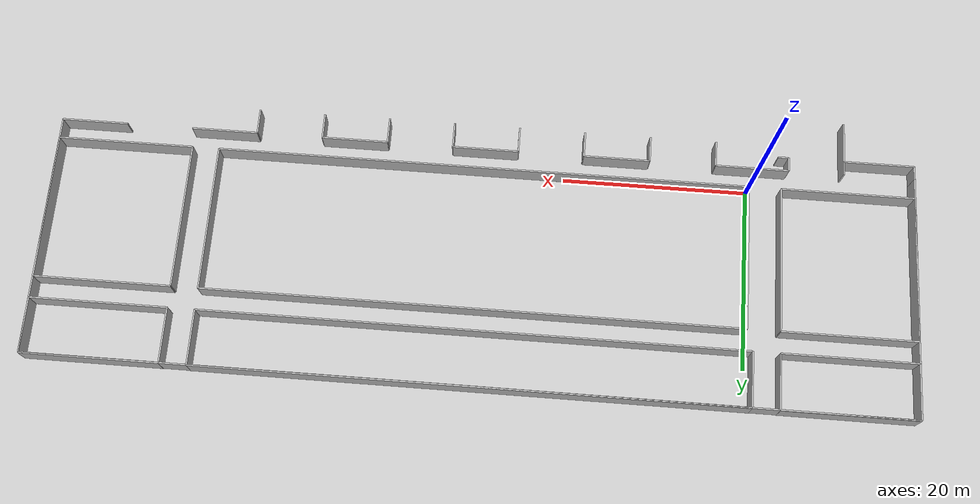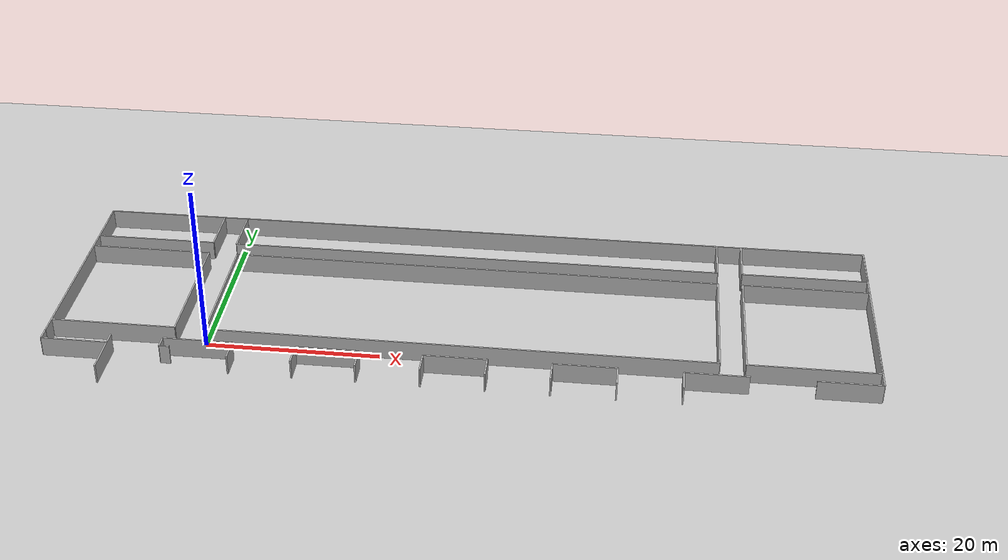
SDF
<?xml version="1.0"?>
<sdf version="1.4">
  <world name="default">
    <include>
      <uri>model://sun</uri>
    </include>
    <include>
      <uri>model://ground_plane</uri>
    </include>

    <model name="model_0">
      <pose>0 0 1 0 0 0</pose>

      <link name='Wall_0'>
        <pose>28.988 0 0 0 0 0</pose>
        <collision name='Wall_0_Collision'>
          <geometry>
            <box>
              <size>57.976 0.169 2.5</size>
            </box>
          </geometry>
        </collision>
        <visual name='Wall_0_Visual'>
          <geometry>
            <box>
              <size>57.976 0.169 2.5</size>
            </box>
          </geometry>
        </visual>
      </link>

      <link name='Wall_1'>
        <pose>28.988 16 0 0 0 0</pose>
        <collision name='Wall_1_Collision'>
          <geometry>
            <box>
              <size>57.976 0.169 2.5</size>
            </box>
          </geometry>
        </collision>
        <visual name='Wall_1_Visual'>
          <geometry>
            <box>
              <size>57.976 0.169 2.5</size>
            </box>
          </geometry>
        </visual>
      </link>

      <link name='Wall_2'>
        <pose>0 8 0 0 0 1.5707</pose>
        <collision name='Wall_2_Collision'>
          <geometry>
            <box>
              <size>16 0.169 2.5</size>
            </box>
          </geometry>
        </collision>
        <visual name='Wall_2_Visual'>
          <geometry>
            <box>
              <size>16 0.169 2.5</size>
            </box>
          </geometry>
        </visual>
      </link>

      <link name='Wall_3'>
        <pose>57.976 8 0 0 0 1.5707</pose>
        <collision name='Wall_3_Collision'>
          <geometry>
            <box>
              <size>16 0.169 2.5</size>
            </box>
          </geometry>
        </collision>
        <visual name='Wall_3_Visual'>
          <geometry>
            <box>
              <size>16 0.169 2.5</size>
            </box>
          </geometry>
        </visual>
      </link>

      <static>1</static>
    </model>

    <model name="model_1">
      <pose>60.900 0 1 0 0 0</pose>

      <link name='Wall_0'>
        <pose>7.369 0 0 0 0 0</pose>
        <collision name='Wall_0_Collision'>
          <geometry>
            <box>
              <size>14.738 0.169 2.5</size>
            </box>
          </geometry>
        </collision>
        <visual name='Wall_0_Visual'>
          <geometry>
            <box>
              <size>14.738 0.169 2.5</size>
            </box>
          </geometry>
        </visual>
      </link>

      <link name='Wall_1'>
        <pose>7.369 16 0 0 0 0</pose>
        <collision name='Wall_1_Collision'>
          <geometry>
            <box>
              <size>14.738 0.169 2.5</size>
            </box>
          </geometry>
        </collision>
        <visual name='Wall_1_Visual'>
          <geometry>
            <box>
              <size>14.738 0.169 2.5</size>
            </box>
          </geometry>
        </visual>
      </link>

      <link name='Wall_2'>
        <pose>0 8 0 0 0 1.5707</pose>
        <collision name='Wall_2_Collision'>
          <geometry>
            <box>
              <size>16 0.169 2.5</size>
            </box>
          </geometry>
        </collision>
        <visual name='Wall_2_Visual'>
          <geometry>
            <box>
              <size>16 0.169 2.5</size>
            </box>
          </geometry>
        </visual>
      </link>

      <link name='Wall_3'>
        <pose>14.738 8 0 0 0 1.5707</pose>
        <collision name='Wall_3_Collision'>
          <geometry>
            <box>
              <size>16 0.169 2.5</size>
            </box>
          </geometry>
        </collision>
        <visual name='Wall_3_Visual'>
          <geometry>
            <box>
              <size>16 0.169 2.5</size>
            </box>
          </geometry>
        </visual>
      </link>

      <static>1</static>
    </model>

    <model name="model_2">
      <pose>-17.962 0 1 0 0 0</pose>

      <link name='Wall_0'>
        <pose>7.219 0 0 0 0 0</pose>
        <collision name='Wall_0_Collision'>
          <geometry>
            <box>
              <size>14.438 0.169 2.5</size>
            </box>
          </geometry>
        </collision>
        <visual name='Wall_0_Visual'>
          <geometry>
            <box>
              <size>14.438 0.169 2.5</size>
            </box>
          </geometry>
        </visual>
      </link>

      <link name='Wall_1'>
        <pose>7.219 16 0 0 0 0</pose>
        <collision name='Wall_1_Collision'>
          <geometry>
            <box>
              <size>14.438 0.169 2.5</size>
            </box>
          </geometry>
        </collision>
        <visual name='Wall_1_Visual'>
          <geometry>
            <box>
              <size>14.438 0.169 2.5</size>
            </box>
          </geometry>
        </visual>
      </link>

      <link name='Wall_2'>
        <pose>0 8 0 0 0 1.5707</pose>
        <collision name='Wall_2_Collision'>
          <geometry>
            <box>
              <size>16 0.169 2.5</size>
            </box>
          </geometry>
        </collision>
        <visual name='Wall_2_Visual'>
          <geometry>
            <box>
              <size>16 0.169 2.5</size>
            </box>
          </geometry>
        </visual>
      </link>

      <link name='Wall_3'>
        <pose>14.438 8 0 0 0 1.5707</pose>
        <collision name='Wall_3_Collision'>
          <geometry>
            <box>
              <size>16 0.169 2.5</size>
            </box>
          </geometry>
        </collision>
        <visual name='Wall_3_Visual'>
          <geometry>
            <box>
              <size>16 0.169 2.5</size>
            </box>
          </geometry>
        </visual>
      </link>

      <static>1</static>
    </model>

    <model name="model_3">
      <pose>-17.962 18.362 1 0 0 0</pose>

      <link name='Wall_0'>
        <pose>7.219 0 0 0 0 0</pose>
        <collision name='Wall_0_Collision'>
          <geometry>
            <box>
              <size>14.438 0.169 2.5</size>
            </box>
          </geometry>
        </collision>
        <visual name='Wall_0_Visual'>
          <geometry>
            <box>
              <size>14.438 0.169 2.5</size>
            </box>
          </geometry>
        </visual>
      </link>

      <link name='Wall_1'>
        <pose>7.219 6 0 0 0 0</pose>
        <collision name='Wall_1_Collision'>
          <geometry>
            <box>
              <size>14.438 0.169 2.5</size>
            </box>
          </geometry>
        </collision>
        <visual name='Wall_1_Visual'>
          <geometry>
            <box>
              <size>14.438 0.169 2.5</size>
            </box>
          </geometry>
        </visual>
      </link>

      <link name='Wall_2'>
        <pose>0 3 0 0 0 1.5707</pose>
        <collision name='Wall_2_Collision'>
          <geometry>
            <box>
              <size>6 0.169 2.5</size>
            </box>
          </geometry>
        </collision>
        <visual name='Wall_2_Visual'>
          <geometry>
            <box>
              <size>6 0.169 2.5</size>
            </box>
          </geometry>
        </visual>
      </link>

      <link name='Wall_3'>
        <pose>14.438 3 0 0 0 1.5707</pose>
        <collision name='Wall_3_Collision'>
          <geometry>
            <box>
              <size>6 0.169 2.5</size>
            </box>
          </geometry>
        </collision>
        <visual name='Wall_3_Visual'>
          <geometry>
            <box>
              <size>6 0.169 2.5</size>
            </box>
          </geometry>
        </visual>
      </link>

      <static>1</static>
    </model>

    <model name="model_4">
      <pose>-0.636 18.362 1 0 0 0</pose>

      <link name='Wall_0'>
        <pose>29.306 0 0 0 0 0</pose>
        <collision name='Wall_0_Collision'>
          <geometry>
            <box>
              <size>58.612 0.169 2.5</size>
            </box>
          </geometry>
        </collision>
        <visual name='Wall_0_Visual'>
          <geometry>
            <box>
              <size>58.612 0.169 2.5</size>
            </box>
          </geometry>
        </visual>
      </link>

      <link name='Wall_1'>
        <pose>29.306 6 0 0 0 0</pose>
        <collision name='Wall_1_Collision'>
          <geometry>
            <box>
              <size>58.612 0.169 2.5</size>
            </box>
          </geometry>
        </collision>
        <visual name='Wall_1_Visual'>
          <geometry>
            <box>
              <size>58.612 0.169 2.5</size>
            </box>
          </geometry>
        </visual>
      </link>

      <link name='Wall_2'>
        <pose>0 3 0 0 0 1.5707</pose>
        <collision name='Wall_2_Collision'>
          <geometry>
            <box>
              <size>6 0.169 2.5</size>
            </box>
          </geometry>
        </collision>
        <visual name='Wall_2_Visual'>
          <geometry>
            <box>
              <size>6 0.169 2.5</size>
            </box>
          </geometry>
        </visual>
      </link>

      <link name='Wall_3'>
        <pose>58.612 3 0 0 0 1.5707</pose>
        <collision name='Wall_3_Collision'>
          <geometry>
            <box>
              <size>6 0.169 2.5</size>
            </box>
          </geometry>
        </collision>
        <visual name='Wall_3_Visual'>
          <geometry>
            <box>
              <size>6 0.169 2.5</size>
            </box>
          </geometry>
        </visual>
      </link>

      <static>1</static>
    </model>

    <model name="model_5">
      <pose>60.900 18.362 1 0 0 0</pose>

      <link name='Wall_0'>
        <pose>7.369 0 0 0 0 0</pose>
        <collision name='Wall_0_Collision'>
          <geometry>
            <box>
              <size>14.738 0.169 2.5</size>
            </box>
          </geometry>
        </collision>
        <visual name='Wall_0_Visual'>
          <geometry>
            <box>
              <size>14.738 0.169 2.5</size>
            </box>
          </geometry>
        </visual>
      </link>

      <link name='Wall_1'>
        <pose>7.369 6 0 0 0 0</pose>
        <collision name='Wall_1_Collision'>
          <geometry>
            <box>
              <size>14.738 0.169 2.5</size>
            </box>
          </geometry>
        </collision>
        <visual name='Wall_1_Visual'>
          <geometry>
            <box>
              <size>14.738 0.169 2.5</size>
            </box>
          </geometry>
        </visual>
      </link>

      <link name='Wall_2'>
        <pose>0 3 0 0 0 1.5707</pose>
        <collision name='Wall_2_Collision'>
          <geometry>
            <box>
              <size>6 0.169 2.5</size>
            </box>
          </geometry>
        </collision>
        <visual name='Wall_2_Visual'>
          <geometry>
            <box>
              <size>6 0.169 2.5</size>
            </box>
          </geometry>
        </visual>
      </link>

      <link name='Wall_3'>
        <pose>14.738 3 0 0 0 1.5707</pose>
        <collision name='Wall_3_Collision'>
          <geometry>
            <box>
              <size>6 0.169 2.5</size>
            </box>
          </geometry>
        </collision>
        <visual name='Wall_3_Visual'>
          <geometry>
            <box>
              <size>6 0.169 2.5</size>
            </box>
          </geometry>
        </visual>
      </link>

      <static>1</static>
    </model>

    <model name="model_6">
      <pose>-17.962 -2.202 1 0 0 0</pose>

      <link name='Wall_0'>
        <pose>0 -0.755 0 0 0 1.5707</pose>
        <collision name='Wall_0_Collision'>
          <geometry>
            <box>
              <size>1.51 0.169 2.5</size>
            </box>
          </geometry>
        </collision>
        <visual name='Wall_0_Visual'>
          <geometry>
            <box>
              <size>1.51 0.169 2.5</size>
            </box>
          </geometry>
        </visual>
      </link>

      <link name='Wall_1'>
        <pose>3.809 -1.51 0 0 0 0</pose>
        <collision name='Wall_1_Collision'>
          <geometry>
            <box>
              <size>7.618 0.169 2.5</size>
            </box>
          </geometry>
        </collision>
        <visual name='Wall_1_Visual'>
          <geometry>
            <box>
              <size>7.618 0.169 2.5</size>
            </box>
          </geometry>
        </visual>
      </link>

      <link name='Wall_2'>
        <pose>7.618 -3.005 0 0 0 1.5707</pose>
        <collision name='Wall_2_Collision'>
          <geometry>
            <box>
              <size>6.01 0.169 2.5</size>
            </box>
          </geometry>
        </collision>
        <visual name='Wall_2_Visual'>
          <geometry>
            <box>
              <size>6.01 0.169 2.5</size>
            </box>
          </geometry>
        </visual>
      </link>

      <link name='Wall_3'>
        <pose>13.638 -0.755 0 0 0 1.5707</pose>
        <collision name='Wall_3_Collision'>
          <geometry>
            <box>
              <size>1.51 0.169 2.5</size>
            </box>
          </geometry>
        </collision>
        <visual name='Wall_3_Visual'>
          <geometry>
            <box>
              <size>1.51 0.169 2.5</size>
            </box>
          </geometry>
        </visual>
      </link>

      <link name='Wall_4'>
        <pose>14.214 -1.51 0 0 0 0</pose>
        <collision name='Wall_4_Collision'>
          <geometry>
            <box>
              <size>1.152 0.169 2.5</size>
            </box>
          </geometry>
        </collision>
        <visual name='Wall_4_Visual'>
          <geometry>
            <box>
              <size>1.152 0.169 2.5</size>
            </box>
          </geometry>
        </visual>
      </link>

      <link name='Wall_5'>
        <pose>17.619 0 0 0 0 0</pose>
        <collision name='Wall_5_Collision'>
          <geometry>
            <box>
              <size>7.962 0.169 2.5</size>
            </box>
          </geometry>
        </collision>
        <visual name='Wall_5_Visual'>
          <geometry>
            <box>
              <size>7.962 0.169 2.5</size>
            </box>
          </geometry>
        </visual>
      </link>

      <link name='Wall_6'>
        <pose>21.6 -1.39375 0 0 0 1.5707</pose>
        <collision name='Wall_6_Collision'>
          <geometry>
            <box>
              <size>2.7875 0.169 2.5</size>
            </box>
          </geometry>
        </collision>
        <visual name='Wall_6_Visual'>
          <geometry>
            <box>
              <size>2.7875 0.169 2.5</size>
            </box>
          </geometry>
        </visual>
      </link>
      <link name='Wall_7'>
        <pose>28.8 -1.39375 0 0 0 1.5707</pose>
        <collision name='Wall_7_Collision'>
          <geometry>
            <box>
              <size>2.7875 0.169 2.5</size>
            </box>
          </geometry>
        </collision>
        <visual name='Wall_7_Visual'>
          <geometry>
            <box>
              <size>2.7875 0.169 2.5</size>
            </box>
          </geometry>
        </visual>
      </link>
      <link name='Wall_8'>
        <pose>32.4 0 0 0 0 0</pose>
        <collision name='Wall_8_Collision'>
          <geometry>
            <box>
              <size>7.2 0.169 2.5</size>
            </box>
          </geometry>
        </collision>
        <visual name='Wall_8_Visual'>
          <geometry>
            <box>
              <size>7.2 0.169 2.5</size>
            </box>
          </geometry>
        </visual>
      </link>

      <link name='Wall_9'>
        <pose>36.0 -1.39375 0 0 0 1.5707</pose>
        <collision name='Wall_9_Collision'>
          <geometry>
            <box>
              <size>2.7875 0.169 2.5</size>
            </box>
          </geometry>
        </collision>
        <visual name='Wall_9_Visual'>
          <geometry>
            <box>
              <size>2.7875 0.169 2.5</size>
            </box>
          </geometry>
        </visual>
      </link>
      <link name='Wall_10'>
        <pose>43.2 -1.39375 0 0 0 1.5707</pose>
        <collision name='Wall_10_Collision'>
          <geometry>
            <box>
              <size>2.7875 0.169 2.5</size>
            </box>
          </geometry>
        </collision>
        <visual name='Wall_10_Visual'>
          <geometry>
            <box>
              <size>2.7875 0.169 2.5</size>
            </box>
          </geometry>
        </visual>
      </link>
      <link name='Wall_11'>
        <pose>46.8 0 0 0 0 0</pose>
        <collision name='Wall_11_Collision'>
          <geometry>
            <box>
              <size>7.2 0.169 2.5</size>
            </box>
          </geometry>
        </collision>
        <visual name='Wall_11_Visual'>
          <geometry>
            <box>
              <size>7.2 0.169 2.5</size>
            </box>
          </geometry>
        </visual>
      </link>

      <link name='Wall_12'>
        <pose>50.4 -1.39375 0 0 0 1.5707</pose>
        <collision name='Wall_12_Collision'>
          <geometry>
            <box>
              <size>2.7875 0.169 2.5</size>
            </box>
          </geometry>
        </collision>
        <visual name='Wall_12_Visual'>
          <geometry>
            <box>
              <size>2.7875 0.169 2.5</size>
            </box>
          </geometry>
        </visual>
      </link>
      <link name='Wall_13'>
        <pose>57.6 -1.39375 0 0 0 1.5707</pose>
        <collision name='Wall_13_Collision'>
          <geometry>
            <box>
              <size>2.7875 0.169 2.5</size>
            </box>
          </geometry>
        </collision>
        <visual name='Wall_13_Visual'>
          <geometry>
            <box>
              <size>2.7875 0.169 2.5</size>
            </box>
          </geometry>
        </visual>
      </link>
      <link name='Wall_14'>
        <pose>61.2 0 0 0 0 0</pose>
        <collision name='Wall_14_Collision'>
          <geometry>
            <box>
              <size>7.2 0.169 2.5</size>
            </box>
          </geometry>
        </collision>
        <visual name='Wall_14_Visual'>
          <geometry>
            <box>
              <size>7.2 0.169 2.5</size>
            </box>
          </geometry>
        </visual>
      </link>

      <link name='Wall_15'>
        <pose>64.8 -1.39375 0 0 0 1.5707</pose>
        <collision name='Wall_15_Collision'>
          <geometry>
            <box>
              <size>2.7875 0.169 2.5</size>
            </box>
          </geometry>
        </collision>
        <visual name='Wall_15_Visual'>
          <geometry>
            <box>
              <size>2.7875 0.169 2.5</size>
            </box>
          </geometry>
        </visual>
      </link>
      <link name='Wall_16'>
        <pose>72.0 -1.39375 0 0 0 1.5707</pose>
        <collision name='Wall_16_Collision'>
          <geometry>
            <box>
              <size>2.7875 0.169 2.5</size>
            </box>
          </geometry>
        </collision>
        <visual name='Wall_16_Visual'>
          <geometry>
            <box>
              <size>2.7875 0.169 2.5</size>
            </box>
          </geometry>
        </visual>
      </link>
      <link name='Wall_17'>
        <pose>75.6 0 0 0 0 0</pose>
        <collision name='Wall_17_Collision'>
          <geometry>
            <box>
              <size>7.2 0.169 2.5</size>
            </box>
          </geometry>
        </collision>
        <visual name='Wall_17_Visual'>
          <geometry>
            <box>
              <size>7.2 0.169 2.5</size>
            </box>
          </geometry>
        </visual>
      </link>

      <link name='Wall_18'>
        <pose>90 0 0 0 0 0</pose>
        <collision name='Wall_18_Collision'>
          <geometry>
            <box>
              <size>7.2 0.169 2.5</size>
            </box>
          </geometry>
        </collision>
        <visual name='Wall_18_Visual'>
          <geometry>
            <box>
              <size>7.2 0.169 2.5</size>
            </box>
          </geometry>
        </visual>
      </link>

      <static>1</static>
    </model>

    <model name="model_7">
      <pose>-17.962 -2.202 1 0 0 0</pose>

      <link name='Wall_0'>
        <pose>0 13.27 0 0 0 1.5707</pose>
        <collision name='Wall_0_Collision'>
          <geometry>
            <box>
              <size>26.54 0.16 2.5</size>
            </box>
          </geometry>
        </collision>
        <visual name='Wall_0_Visual'>
          <geometry>
            <box>
              <size>26.54 0.16 2.5</size>
            </box>
          </geometry>
        </visual>
      </link>

      <link name='Wall_1'>
        <pose>46.8 26.54 0 0 0 0</pose>
        <collision name='Wall_1_Collision'>
          <geometry>
            <box>
              <size>93.6 0.16 2.5</size>
            </box>
          </geometry>
        </collision>
        <visual name='Wall_1_Visual'>
          <geometry>
            <box>
              <size>93.6 0.16 2.5</size>
            </box>
          </geometry>
        </visual>
      </link>

      <link name='Wall_3'>
        <pose>93.6 13.27 0 0 0 1.5707</pose>
        <collision name='Wall_3_Collision'>
          <geometry>
            <box>
              <size>26.54 0.16 2.5</size>
            </box>
          </geometry>
        </collision>
        <visual name='Wall_3_Visual'>
          <geometry>
            <box>
              <size>26.54 0.16 2.5</size>
            </box>
          </geometry>
        </visual>
      </link>

      <static>1</static>
    </model>

  </world>
</sdf>
